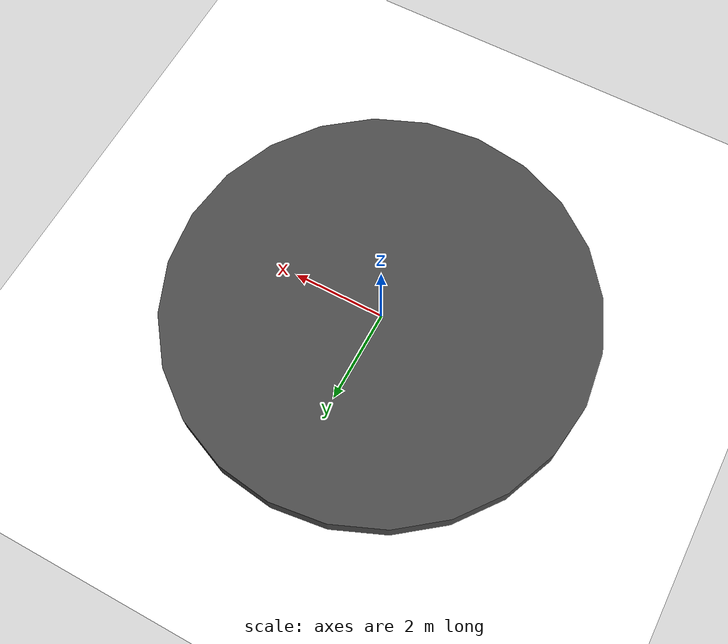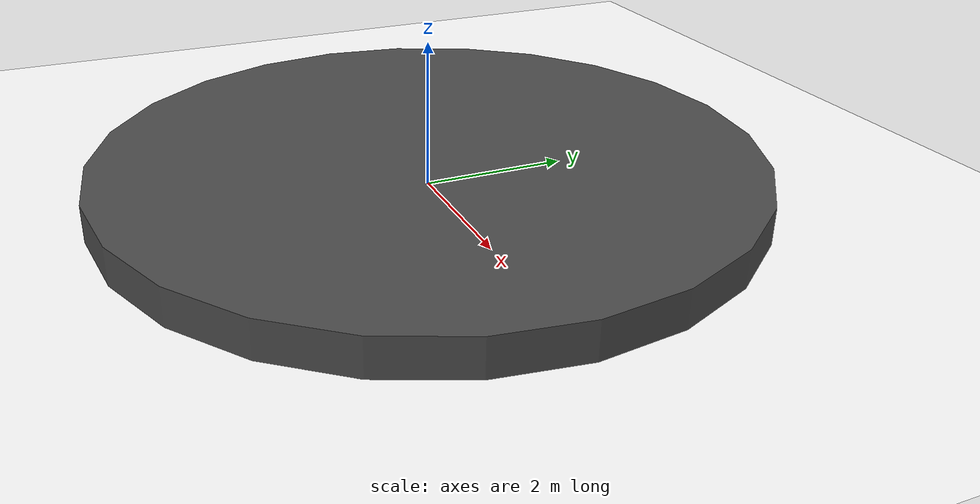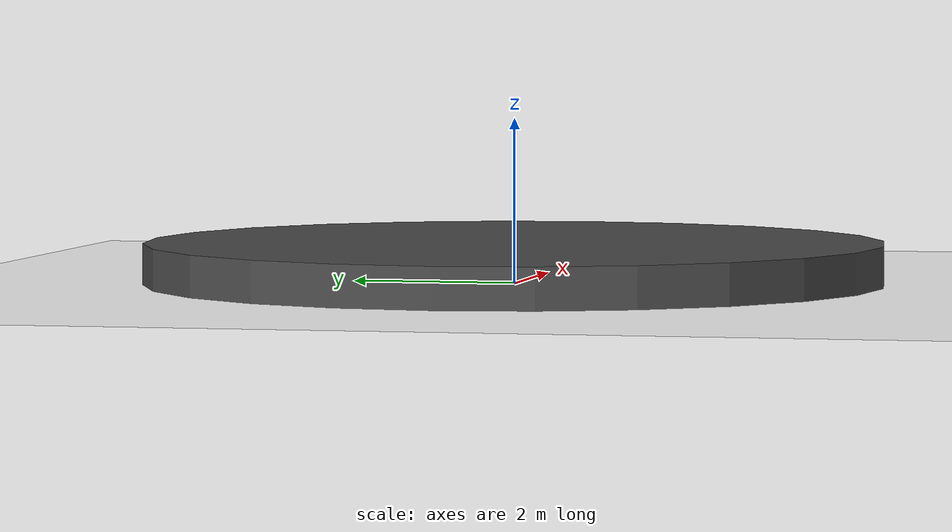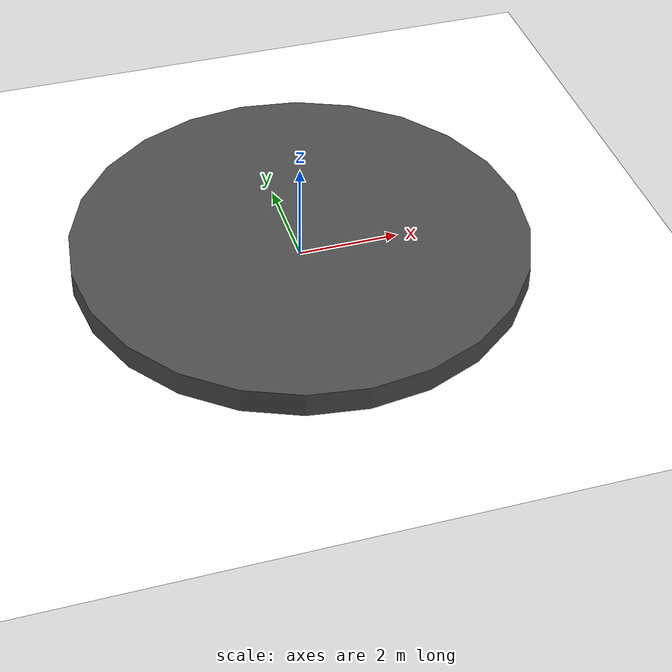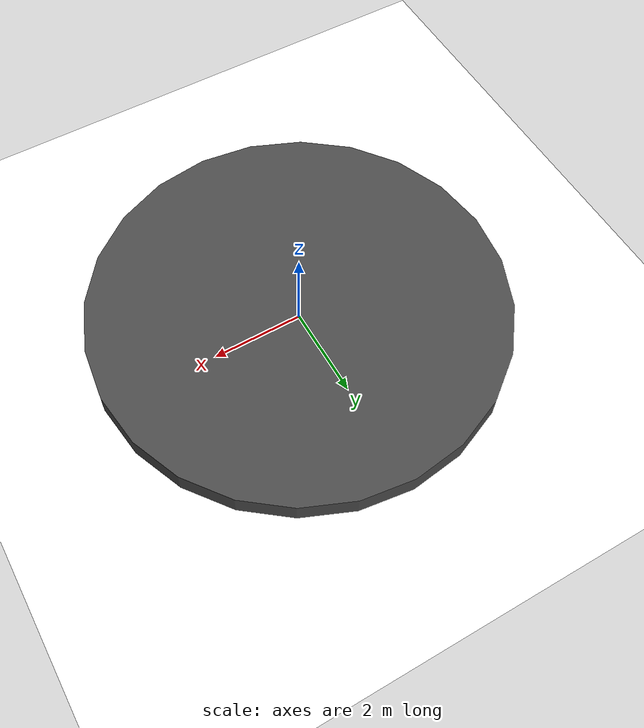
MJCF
<mujoco model="mutiagent_world">
  <compiler angle="degree" coordinate="local" inertiafromgeom="true"/>
  <option integrator="RK4" timestep="0.003" solver="PGS" iterations="1000"/>
  <default>
    <joint armature="1" damping="1" limited="true"/>
  </default>
  <visual>
    <headlight ambient=".1 .1 .1" diffuse=".6 .6 .6" specular="0.3 0.3 0.3"/>
    <map znear=".01"/>
    <quality shadowsize="16384"/>
  </visual>
  <asset>
    <texture builtin="gradient" height="100" rgb1="1 1 1" rgb2="0 0 0" type="skybox" width="100"/>
    <texture builtin="flat" height="1278" mark="cross" markrgb="0 0 0" name="texgeom" random="0.01" rgb1="0.8 0.6 0.4" rgb2="0.8 0.6 0.4" type="cube" width="127"/>
    <texture builtin="checker" height="100" name="texplane" rgb1="0.5 0.5 0.5" rgb2="0.5 0.5 0.5" type="2d" width="100" markrgb="0.2 0.2 0.2" mark="edge"/>
    <texture name="MatPlane" type="2d" builtin="checker" rgb1=".5 .5 .5" rgb2=".5 .5 .5" width="300" height="300" mark="edge" markrgb="0.1 0.1 0.1" />
    <material name="MatPlane" texture="MatPlane" texrepeat="2 2" texuniform="true" reflectance=".2" />
    <material name="geom" texture="texgeom" texuniform="true"/>
  </asset>
  <worldbody>
    <light cutoff="100" diffuse="1 1 1" dir="-0 0 -1.3" directional="true" exponent="1" pos="0 0 1.3" specular=".1 .1 .1"/>
    <geom contype="1" conaffinity="1" friction="1 .1 .1" condim="3" material="MatPlane" name="floor" pos="0 0 0" rgba="1 1 1 1" size="20 20 0.125" type="plane"/>
    <geom fromto="4 -5 0  4 +5 0" name="rightgoal" rgba="0.6 0.0 0.0 0" size=".03" type="cylinder"/>
    <geom fromto="-4 -5 0  -4 +5 0" name="leftgoal" rgba="0.6 0.0 0.0 0" size=".03" type="cylinder"/>
    <geom conaffinity="1" condim="3" contype="1" friction="1 .1 .1" name="arena" size="4.5 .25" type="cylinder" pos="0 0 0.25" rgba="0.3 0.3 0.3 1"/>
  </worldbody>
</mujoco>
